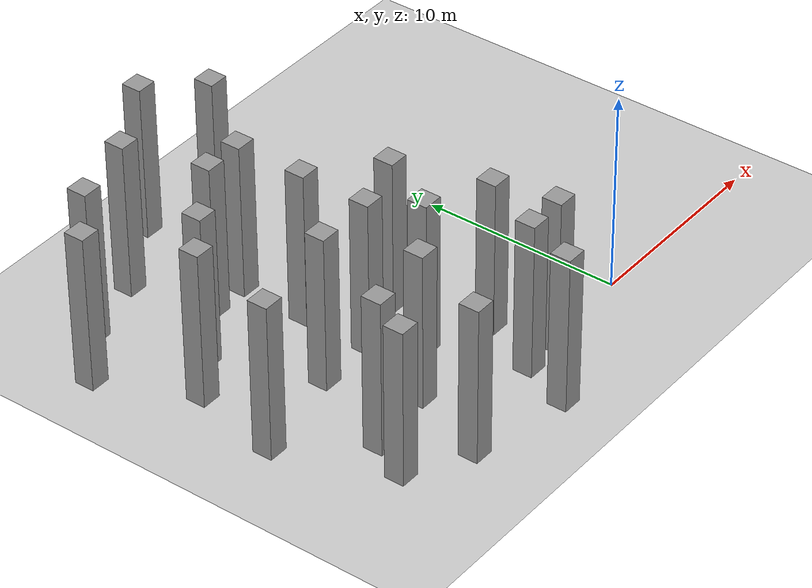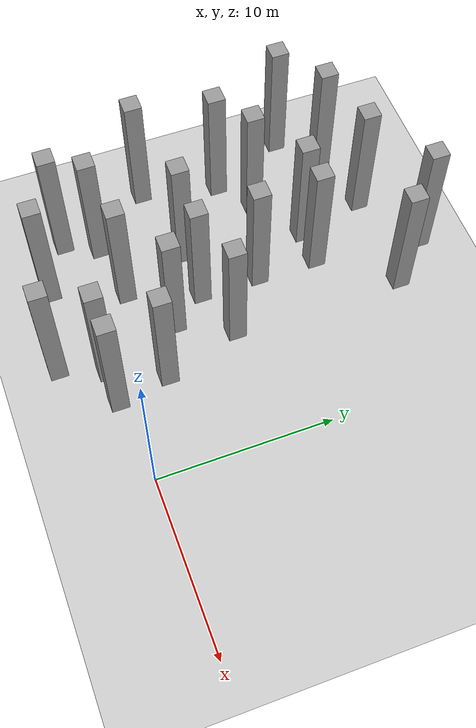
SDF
<sdf version="1.7">
 <world name="default">
  <model name="ground_plane">
   <static>1</static>
   <link name="link">
    <collision name="collision">
     <geometry><plane><normal>0 0 1</normal><size>100 100</size></plane></geometry>
     <surface>
      <contact><collide_bitmask>65535</collide_bitmask></contact>
      <friction><ode><mu>100</mu><mu2>50</mu2></ode></friction>
     </surface>
    </collision>
    <visual name="visual">
     <cast_shadows>0</cast_shadows>
     <geometry><plane><normal>0 0 1</normal><size>100 100</size></plane></geometry>
     <material>
      <script><uri>file://media/materials/scripts/gazebo.material</uri><name>Gazebo/Grey</name></script>
     </material>
    </visual>
   </link>
  </model>
  <model name="unit_box_static95_clone_52_clone_clone_2">
   <link name="link">
    <inertial>
     <mass>1</mass>
     <inertia>
      <ixx>0.166667</ixx>
      <ixy>0</ixy>
      <ixz>0</ixz>
      <iyy>0.166667</iyy>
      <iyz>0</iyz>
      <izz>0.166667</izz>
     </inertia>
    </inertial>
    <visual name="visual">
     <geometry><box><size>1 1 8</size></box></geometry>
     <material>
      <script><name>Gazebo/Grey</name><uri>file://media/materials/scripts/gazebo.material</uri></script>
      <shader type="pixel"/>
     </material>
    </visual>
    <collision name="collision">
     <geometry><box><size>1 1 8</size></box></geometry>
     <surface>
      <friction>
       <ode><mu>1</mu><mu2>1</mu2><fdir1>0 0 0</fdir1><slip1>0</slip1><slip2>0</slip2></ode>
       <torsional>
        <coefficient>1</coefficient>
        <patch_radius>0</patch_radius>
        <surface_radius>0</surface_radius>
        <use_patch_radius>1</use_patch_radius>
        <ode><slip>0</slip></ode>
       </torsional>
      </friction>
      <bounce><restitution_coefficient>0</restitution_coefficient><threshold>1e+06</threshold></bounce>
      <contact>
       <collide_without_contact>0</collide_without_contact>
       <collide_without_contact_bitmask>1</collide_without_contact_bitmask>
       <collide_bitmask>1</collide_bitmask>
       <ode>
        <soft_cfm>0</soft_cfm>
        <soft_erp>0.2</soft_erp>
        <kp>1e+13</kp>
        <kd>1</kd>
        <max_vel>0.01</max_vel>
        <min_depth>0</min_depth>
       </ode>
       <bullet>
        <split_impulse>1</split_impulse>
        <split_impulse_penetration_threshold>-0.01</split_impulse_penetration_threshold>
        <soft_cfm>0</soft_cfm>
        <soft_erp>0.2</soft_erp>
        <kp>1e+13</kp>
        <kd>1</kd>
       </bullet>
      </contact>
     </surface>
    </collision>
   </link>
   <static>1</static>
   <pose>-7 7 4 0 -0 0</pose>
  </model>
  <model name="unit_box_static95_clone_52_clone_clone_3">
   <link name="link">
    <inertial>
     <mass>1</mass>
     <inertia>
      <ixx>0.166667</ixx>
      <ixy>0</ixy>
      <ixz>0</ixz>
      <iyy>0.166667</iyy>
      <iyz>0</iyz>
      <izz>0.166667</izz>
     </inertia>
    </inertial>
    <visual name="visual">
     <geometry><box><size>1 1 8</size></box></geometry>
     <material>
      <script><name>Gazebo/Grey</name><uri>file://media/materials/scripts/gazebo.material</uri></script>
      <shader type="pixel"/>
     </material>
    </visual>
    <collision name="collision">
     <geometry><box><size>1 1 8</size></box></geometry>
     <surface>
      <friction>
       <ode><mu>1</mu><mu2>1</mu2><fdir1>0 0 0</fdir1><slip1>0</slip1><slip2>0</slip2></ode>
       <torsional>
        <coefficient>1</coefficient>
        <patch_radius>0</patch_radius>
        <surface_radius>0</surface_radius>
        <use_patch_radius>1</use_patch_radius>
        <ode><slip>0</slip></ode>
       </torsional>
      </friction>
      <bounce><restitution_coefficient>0</restitution_coefficient><threshold>1e+06</threshold></bounce>
      <contact>
       <collide_without_contact>0</collide_without_contact>
       <collide_without_contact_bitmask>1</collide_without_contact_bitmask>
       <collide_bitmask>1</collide_bitmask>
       <ode>
        <soft_cfm>0</soft_cfm>
        <soft_erp>0.2</soft_erp>
        <kp>1e+13</kp>
        <kd>1</kd>
        <max_vel>0.01</max_vel>
        <min_depth>0</min_depth>
       </ode>
       <bullet>
        <split_impulse>1</split_impulse>
        <split_impulse_penetration_threshold>-0.01</split_impulse_penetration_threshold>
        <soft_cfm>0</soft_cfm>
        <soft_erp>0.2</soft_erp>
        <kp>1e+13</kp>
        <kd>1</kd>
       </bullet>
      </contact>
     </surface>
    </collision>
   </link>
   <static>1</static>
   <pose>-5.58229 2.57124 4 0 -0 0</pose>
  </model>
  <model name="unit_box_static95_clone_52_clone_clone_4">
   <link name="link">
    <inertial>
     <mass>1</mass>
     <inertia>
      <ixx>0.166667</ixx>
      <ixy>0</ixy>
      <ixz>0</ixz>
      <iyy>0.166667</iyy>
      <iyz>0</iyz>
      <izz>0.166667</izz>
     </inertia>
    </inertial>
    <visual name="visual">
     <geometry><box><size>1 1 8</size></box></geometry>
     <material>
      <script><name>Gazebo/Grey</name><uri>file://media/materials/scripts/gazebo.material</uri></script>
      <shader type="pixel"/>
     </material>
    </visual>
    <collision name="collision">
     <geometry><box><size>1 1 8</size></box></geometry>
     <surface>
      <friction>
       <ode><mu>1</mu><mu2>1</mu2><fdir1>0 0 0</fdir1><slip1>0</slip1><slip2>0</slip2></ode>
       <torsional>
        <coefficient>1</coefficient>
        <patch_radius>0</patch_radius>
        <surface_radius>0</surface_radius>
        <use_patch_radius>1</use_patch_radius>
        <ode><slip>0</slip></ode>
       </torsional>
      </friction>
      <bounce><restitution_coefficient>0</restitution_coefficient><threshold>1e+06</threshold></bounce>
      <contact>
       <collide_without_contact>0</collide_without_contact>
       <collide_without_contact_bitmask>1</collide_without_contact_bitmask>
       <collide_bitmask>1</collide_bitmask>
       <ode>
        <soft_cfm>0</soft_cfm>
        <soft_erp>0.2</soft_erp>
        <kp>1e+13</kp>
        <kd>1</kd>
        <max_vel>0.01</max_vel>
        <min_depth>0</min_depth>
       </ode>
       <bullet>
        <split_impulse>1</split_impulse>
        <split_impulse_penetration_threshold>-0.01</split_impulse_penetration_threshold>
        <soft_cfm>0</soft_cfm>
        <soft_erp>0.2</soft_erp>
        <kp>1e+13</kp>
        <kd>1</kd>
       </bullet>
      </contact>
     </surface>
    </collision>
   </link>
   <static>1</static>
   <pose>-8.55951 4 4 0 -0 0</pose>
  </model>
  <model name="unit_box_static95_clone_52_clone_clone_5">
   <link name="link">
    <inertial>
     <mass>1</mass>
     <inertia>
      <ixx>0.166667</ixx>
      <ixy>0</ixy>
      <ixz>0</ixz>
      <iyy>0.166667</iyy>
      <iyz>0</iyz>
      <izz>0.166667</izz>
     </inertia>
    </inertial>
    <visual name="visual">
     <geometry><box><size>1 1 8</size></box></geometry>
     <material>
      <script><name>Gazebo/Grey</name><uri>file://media/materials/scripts/gazebo.material</uri></script>
      <shader type="pixel"/>
     </material>
    </visual>
    <collision name="collision">
     <geometry><box><size>1 1 8</size></box></geometry>
     <surface>
      <friction>
       <ode><mu>1</mu><mu2>1</mu2><fdir1>0 0 0</fdir1><slip1>0</slip1><slip2>0</slip2></ode>
       <torsional>
        <coefficient>1</coefficient>
        <patch_radius>0</patch_radius>
        <surface_radius>0</surface_radius>
        <use_patch_radius>1</use_patch_radius>
        <ode><slip>0</slip></ode>
       </torsional>
      </friction>
      <bounce><restitution_coefficient>0</restitution_coefficient><threshold>1e+06</threshold></bounce>
      <contact>
       <collide_without_contact>0</collide_without_contact>
       <collide_without_contact_bitmask>1</collide_without_contact_bitmask>
       <collide_bitmask>1</collide_bitmask>
       <ode>
        <soft_cfm>0</soft_cfm>
        <soft_erp>0.2</soft_erp>
        <kp>1e+13</kp>
        <kd>1</kd>
        <max_vel>0.01</max_vel>
        <min_depth>0</min_depth>
       </ode>
       <bullet>
        <split_impulse>1</split_impulse>
        <split_impulse_penetration_threshold>-0.01</split_impulse_penetration_threshold>
        <soft_cfm>0</soft_cfm>
        <soft_erp>0.2</soft_erp>
        <kp>1e+13</kp>
        <kd>1</kd>
       </bullet>
      </contact>
     </surface>
    </collision>
   </link>
   <static>1</static>
   <pose>-11.4691 2 4 0 -0 0</pose>
  </model>
  <model name="unit_box_static95_clone_52_clone_clone_6">
   <link name="link">
    <inertial>
     <mass>1</mass>
     <inertia>
      <ixx>0.166667</ixx>
      <ixy>0</ixy>
      <ixz>0</ixz>
      <iyy>0.166667</iyy>
      <iyz>0</iyz>
      <izz>0.166667</izz>
     </inertia>
    </inertial>
    <visual name="visual">
     <geometry><box><size>1 1 8</size></box></geometry>
     <material>
      <script><name>Gazebo/Grey</name><uri>file://media/materials/scripts/gazebo.material</uri></script>
      <shader type="pixel"/>
     </material>
    </visual>
    <collision name="collision">
     <geometry><box><size>1 1 8</size></box></geometry>
     <surface>
      <friction>
       <ode><mu>1</mu><mu2>1</mu2><fdir1>0 0 0</fdir1><slip1>0</slip1><slip2>0</slip2></ode>
       <torsional>
        <coefficient>1</coefficient>
        <patch_radius>0</patch_radius>
        <surface_radius>0</surface_radius>
        <use_patch_radius>1</use_patch_radius>
        <ode><slip>0</slip></ode>
       </torsional>
      </friction>
      <bounce><restitution_coefficient>0</restitution_coefficient><threshold>1e+06</threshold></bounce>
      <contact>
       <collide_without_contact>0</collide_without_contact>
       <collide_without_contact_bitmask>1</collide_without_contact_bitmask>
       <collide_bitmask>1</collide_bitmask>
       <ode>
        <soft_cfm>0</soft_cfm>
        <soft_erp>0.2</soft_erp>
        <kp>1e+13</kp>
        <kd>1</kd>
        <max_vel>0.01</max_vel>
        <min_depth>0</min_depth>
       </ode>
       <bullet>
        <split_impulse>1</split_impulse>
        <split_impulse_penetration_threshold>-0.01</split_impulse_penetration_threshold>
        <soft_cfm>0</soft_cfm>
        <soft_erp>0.2</soft_erp>
        <kp>1e+13</kp>
        <kd>1</kd>
       </bullet>
      </contact>
     </surface>
    </collision>
   </link>
   <static>1</static>
   <pose>-13 6 4 0 -0 0</pose>
  </model>
  <model name="unit_box_static95_clone_52_clone_clone_7">
   <link name="link">
    <inertial>
     <mass>1</mass>
     <inertia>
      <ixx>0.166667</ixx>
      <ixy>0</ixy>
      <ixz>0</ixz>
      <iyy>0.166667</iyy>
      <iyz>0</iyz>
      <izz>0.166667</izz>
     </inertia>
    </inertial>
    <visual name="visual">
     <geometry><box><size>1 1 8</size></box></geometry>
     <material>
      <script><name>Gazebo/Grey</name><uri>file://media/materials/scripts/gazebo.material</uri></script>
      <shader type="pixel"/>
     </material>
    </visual>
    <collision name="collision">
     <geometry><box><size>1 1 8</size></box></geometry>
     <surface>
      <friction>
       <ode><mu>1</mu><mu2>1</mu2><fdir1>0 0 0</fdir1><slip1>0</slip1><slip2>0</slip2></ode>
       <torsional>
        <coefficient>1</coefficient>
        <patch_radius>0</patch_radius>
        <surface_radius>0</surface_radius>
        <use_patch_radius>1</use_patch_radius>
        <ode><slip>0</slip></ode>
       </torsional>
      </friction>
      <bounce><restitution_coefficient>0</restitution_coefficient><threshold>1e+06</threshold></bounce>
      <contact>
       <collide_without_contact>0</collide_without_contact>
       <collide_without_contact_bitmask>1</collide_without_contact_bitmask>
       <collide_bitmask>1</collide_bitmask>
       <ode>
        <soft_cfm>0</soft_cfm>
        <soft_erp>0.2</soft_erp>
        <kp>1e+13</kp>
        <kd>1</kd>
        <max_vel>0.01</max_vel>
        <min_depth>0</min_depth>
       </ode>
       <bullet>
        <split_impulse>1</split_impulse>
        <split_impulse_penetration_threshold>-0.01</split_impulse_penetration_threshold>
        <soft_cfm>0</soft_cfm>
        <soft_erp>0.2</soft_erp>
        <kp>1e+13</kp>
        <kd>1</kd>
       </bullet>
      </contact>
     </surface>
    </collision>
   </link>
   <static>1</static>
   <pose>-10 6 4 0 -0 0</pose>
  </model>
  <model name="unit_box_static95_clone_52_clone_clone_9">
   <link name="link">
    <inertial>
     <mass>1</mass>
     <inertia>
      <ixx>0.166667</ixx>
      <ixy>0</ixy>
      <ixz>0</ixz>
      <iyy>0.166667</iyy>
      <iyz>0</iyz>
      <izz>0.166667</izz>
     </inertia>
    </inertial>
    <visual name="visual">
     <geometry><box><size>1 1 8</size></box></geometry>
     <material>
      <script><name>Gazebo/Grey</name><uri>file://media/materials/scripts/gazebo.material</uri></script>
      <shader type="pixel"/>
     </material>
    </visual>
    <collision name="collision">
     <geometry><box><size>1 1 8</size></box></geometry>
     <surface>
      <friction>
       <ode><mu>1</mu><mu2>1</mu2><fdir1>0 0 0</fdir1><slip1>0</slip1><slip2>0</slip2></ode>
       <torsional>
        <coefficient>1</coefficient>
        <patch_radius>0</patch_radius>
        <surface_radius>0</surface_radius>
        <use_patch_radius>1</use_patch_radius>
        <ode><slip>0</slip></ode>
       </torsional>
      </friction>
      <bounce><restitution_coefficient>0</restitution_coefficient><threshold>1e+06</threshold></bounce>
      <contact>
       <collide_without_contact>0</collide_without_contact>
       <collide_without_contact_bitmask>1</collide_without_contact_bitmask>
       <collide_bitmask>1</collide_bitmask>
       <ode>
        <soft_cfm>0</soft_cfm>
        <soft_erp>0.2</soft_erp>
        <kp>1e+13</kp>
        <kd>1</kd>
        <max_vel>0.01</max_vel>
        <min_depth>0</min_depth>
       </ode>
       <bullet>
        <split_impulse>1</split_impulse>
        <split_impulse_penetration_threshold>-0.01</split_impulse_penetration_threshold>
        <soft_cfm>0</soft_cfm>
        <soft_erp>0.2</soft_erp>
        <kp>1e+13</kp>
        <kd>1</kd>
       </bullet>
      </contact>
     </surface>
    </collision>
   </link>
   <static>1</static>
   <pose>-10 9.47298 4 0 -0 0</pose>
  </model>
  <model name="unit_box_static95_clone_52_clone_clone_22">
   <link name="link">
    <inertial>
     <mass>1</mass>
     <inertia>
      <ixx>0.166667</ixx>
      <ixy>0</ixy>
      <ixz>0</ixz>
      <iyy>0.166667</iyy>
      <iyz>0</iyz>
      <izz>0.166667</izz>
     </inertia>
    </inertial>
    <visual name="visual">
     <geometry><box><size>1 1 8</size></box></geometry>
     <material>
      <script><name>Gazebo/Grey</name><uri>file://media/materials/scripts/gazebo.material</uri></script>
      <shader type="pixel"/>
     </material>
    </visual>
    <collision name="collision">
     <geometry><box><size>1 1 8</size></box></geometry>
     <surface>
      <friction>
       <ode><mu>1</mu><mu2>1</mu2><fdir1>0 0 0</fdir1><slip1>0</slip1><slip2>0</slip2></ode>
       <torsional>
        <coefficient>1</coefficient>
        <patch_radius>0</patch_radius>
        <surface_radius>0</surface_radius>
        <use_patch_radius>1</use_patch_radius>
        <ode><slip>0</slip></ode>
       </torsional>
      </friction>
      <bounce><restitution_coefficient>0</restitution_coefficient><threshold>1e+06</threshold></bounce>
      <contact>
       <collide_without_contact>0</collide_without_contact>
       <collide_without_contact_bitmask>1</collide_without_contact_bitmask>
       <collide_bitmask>1</collide_bitmask>
       <ode>
        <soft_cfm>0</soft_cfm>
        <soft_erp>0.2</soft_erp>
        <kp>1e+13</kp>
        <kd>1</kd>
        <max_vel>0.01</max_vel>
        <min_depth>0</min_depth>
       </ode>
       <bullet>
        <split_impulse>1</split_impulse>
        <split_impulse_penetration_threshold>-0.01</split_impulse_penetration_threshold>
        <soft_cfm>0</soft_cfm>
        <soft_erp>0.2</soft_erp>
        <kp>1e+13</kp>
        <kd>1</kd>
       </bullet>
      </contact>
     </surface>
    </collision>
   </link>
   <static>1</static>
   <pose>-8 -3 4 0 -0 0</pose>
  </model>
  <model name="unit_box_static95_clone_52_clone_clone_26">
   <link name="link">
    <inertial>
     <mass>1</mass>
     <inertia>
      <ixx>0.166667</ixx>
      <ixy>0</ixy>
      <ixz>0</ixz>
      <iyy>0.166667</iyy>
      <iyz>0</iyz>
      <izz>0.166667</izz>
     </inertia>
    </inertial>
    <visual name="visual">
     <geometry><box><size>1 1 8</size></box></geometry>
     <material>
      <script><name>Gazebo/Grey</name><uri>file://media/materials/scripts/gazebo.material</uri></script>
      <shader type="pixel"/>
     </material>
    </visual>
    <collision name="collision">
     <geometry><box><size>1 1 8</size></box></geometry>
     <surface>
      <friction>
       <ode><mu>1</mu><mu2>1</mu2><fdir1>0 0 0</fdir1><slip1>0</slip1><slip2>0</slip2></ode>
       <torsional>
        <coefficient>1</coefficient>
        <patch_radius>0</patch_radius>
        <surface_radius>0</surface_radius>
        <use_patch_radius>1</use_patch_radius>
        <ode><slip>0</slip></ode>
       </torsional>
      </friction>
      <bounce><restitution_coefficient>0</restitution_coefficient><threshold>1e+06</threshold></bounce>
      <contact>
       <collide_without_contact>0</collide_without_contact>
       <collide_without_contact_bitmask>1</collide_without_contact_bitmask>
       <collide_bitmask>1</collide_bitmask>
       <ode>
        <soft_cfm>0</soft_cfm>
        <soft_erp>0.2</soft_erp>
        <kp>1e+13</kp>
        <kd>1</kd>
        <max_vel>0.01</max_vel>
        <min_depth>0</min_depth>
       </ode>
       <bullet>
        <split_impulse>1</split_impulse>
        <split_impulse_penetration_threshold>-0.01</split_impulse_penetration_threshold>
        <soft_cfm>0</soft_cfm>
        <soft_erp>0.2</soft_erp>
        <kp>1e+13</kp>
        <kd>1</kd>
       </bullet>
      </contact>
     </surface>
    </collision>
   </link>
   <static>1</static>
   <pose>-13 -2 4 0 -0 0</pose>
  </model>
  <model name="unit_box_static95_clone_52_clone_clone_27">
   <link name="link">
    <inertial>
     <mass>1</mass>
     <inertia>
      <ixx>0.166667</ixx>
      <ixy>0</ixy>
      <ixz>0</ixz>
      <iyy>0.166667</iyy>
      <iyz>0</iyz>
      <izz>0.166667</izz>
     </inertia>
    </inertial>
    <visual name="visual">
     <geometry><box><size>1 1 8</size></box></geometry>
     <material>
      <script><name>Gazebo/Grey</name><uri>file://media/materials/scripts/gazebo.material</uri></script>
      <shader type="pixel"/>
     </material>
    </visual>
    <collision name="collision">
     <geometry><box><size>1 1 8</size></box></geometry>
     <surface>
      <friction>
       <ode><mu>1</mu><mu2>1</mu2><fdir1>0 0 0</fdir1><slip1>0</slip1><slip2>0</slip2></ode>
       <torsional>
        <coefficient>1</coefficient>
        <patch_radius>0</patch_radius>
        <surface_radius>0</surface_radius>
        <use_patch_radius>1</use_patch_radius>
        <ode><slip>0</slip></ode>
       </torsional>
      </friction>
      <bounce><restitution_coefficient>0</restitution_coefficient><threshold>1e+06</threshold></bounce>
      <contact>
       <collide_without_contact>0</collide_without_contact>
       <collide_without_contact_bitmask>1</collide_without_contact_bitmask>
       <collide_bitmask>1</collide_bitmask>
       <ode>
        <soft_cfm>0</soft_cfm>
        <soft_erp>0.2</soft_erp>
        <kp>1e+13</kp>
        <kd>1</kd>
        <max_vel>0.01</max_vel>
        <min_depth>0</min_depth>
       </ode>
       <bullet>
        <split_impulse>1</split_impulse>
        <split_impulse_penetration_threshold>-0.01</split_impulse_penetration_threshold>
        <soft_cfm>0</soft_cfm>
        <soft_erp>0.2</soft_erp>
        <kp>1e+13</kp>
        <kd>1</kd>
       </bullet>
      </contact>
     </surface>
    </collision>
   </link>
   <static>1</static>
   <pose>-15 1.47683 4 0 -0 0</pose>
  </model>
  <model name="unit_box_static95_clone_52_clone_clone_28">
   <link name="link">
    <inertial>
     <mass>1</mass>
     <inertia>
      <ixx>0.166667</ixx>
      <ixy>0</ixy>
      <ixz>0</ixz>
      <iyy>0.166667</iyy>
      <iyz>0</iyz>
      <izz>0.166667</izz>
     </inertia>
    </inertial>
    <visual name="visual">
     <geometry><box><size>1 1 8</size></box></geometry>
     <material>
      <script><name>Gazebo/Grey</name><uri>file://media/materials/scripts/gazebo.material</uri></script>
      <shader type="pixel"/>
     </material>
    </visual>
    <collision name="collision">
     <geometry><box><size>1 1 8</size></box></geometry>
     <surface>
      <friction>
       <ode><mu>1</mu><mu2>1</mu2><fdir1>0 0 0</fdir1><slip1>0</slip1><slip2>0</slip2></ode>
       <torsional>
        <coefficient>1</coefficient>
        <patch_radius>0</patch_radius>
        <surface_radius>0</surface_radius>
        <use_patch_radius>1</use_patch_radius>
        <ode><slip>0</slip></ode>
       </torsional>
      </friction>
      <bounce><restitution_coefficient>0</restitution_coefficient><threshold>1e+06</threshold></bounce>
      <contact>
       <collide_without_contact>0</collide_without_contact>
       <collide_without_contact_bitmask>1</collide_without_contact_bitmask>
       <collide_bitmask>1</collide_bitmask>
       <ode>
        <soft_cfm>0</soft_cfm>
        <soft_erp>0.2</soft_erp>
        <kp>1e+13</kp>
        <kd>1</kd>
        <max_vel>0.01</max_vel>
        <min_depth>0</min_depth>
       </ode>
       <bullet>
        <split_impulse>1</split_impulse>
        <split_impulse_penetration_threshold>-0.01</split_impulse_penetration_threshold>
        <soft_cfm>0</soft_cfm>
        <soft_erp>0.2</soft_erp>
        <kp>1e+13</kp>
        <kd>1</kd>
       </bullet>
      </contact>
     </surface>
    </collision>
   </link>
   <static>1</static>
   <pose>-16 -0.417755 4 0 -0 0</pose>
  </model>
  <model name="unit_box_static95_clone_52_clone_clone_62">
   <link name="link">
    <inertial>
     <mass>1</mass>
     <inertia>
      <ixx>0.166667</ixx>
      <ixy>0</ixy>
      <ixz>0</ixz>
      <iyy>0.166667</iyy>
      <iyz>0</iyz>
      <izz>0.166667</izz>
     </inertia>
    </inertial>
    <visual name="visual">
     <geometry><box><size>1 1 8</size></box></geometry>
     <material>
      <script><name>Gazebo/Grey</name><uri>file://media/materials/scripts/gazebo.material</uri></script>
      <shader type="pixel"/>
     </material>
    </visual>
    <collision name="collision">
     <geometry><box><size>1 1 8</size></box></geometry>
     <surface>
      <friction>
       <ode><mu>1</mu><mu2>1</mu2><fdir1>0 0 0</fdir1><slip1>0</slip1><slip2>0</slip2></ode>
       <torsional>
        <coefficient>1</coefficient>
        <patch_radius>0</patch_radius>
        <surface_radius>0</surface_radius>
        <use_patch_radius>1</use_patch_radius>
        <ode><slip>0</slip></ode>
       </torsional>
      </friction>
      <bounce><restitution_coefficient>0</restitution_coefficient><threshold>1e+06</threshold></bounce>
      <contact>
       <collide_without_contact>0</collide_without_contact>
       <collide_without_contact_bitmask>1</collide_without_contact_bitmask>
       <collide_bitmask>1</collide_bitmask>
       <ode>
        <soft_cfm>0</soft_cfm>
        <soft_erp>0.2</soft_erp>
        <kp>1e+13</kp>
        <kd>1</kd>
        <max_vel>0.01</max_vel>
        <min_depth>0</min_depth>
       </ode>
       <bullet>
        <split_impulse>1</split_impulse>
        <split_impulse_penetration_threshold>-0.01</split_impulse_penetration_threshold>
        <soft_cfm>0</soft_cfm>
        <soft_erp>0.2</soft_erp>
        <kp>1e+13</kp>
        <kd>1</kd>
       </bullet>
      </contact>
     </surface>
    </collision>
   </link>
   <static>1</static>
   <pose>-7 17 4 0 -0 0</pose>
  </model>
  <model name="unit_box_static95_clone_52_clone_clone_69">
   <link name="link">
    <inertial>
     <mass>1</mass>
     <inertia>
      <ixx>0.166667</ixx>
      <ixy>0</ixy>
      <ixz>0</ixz>
      <iyy>0.166667</iyy>
      <iyz>0</iyz>
      <izz>0.166667</izz>
     </inertia>
    </inertial>
    <visual name="visual">
     <geometry><box><size>1 1 8</size></box></geometry>
     <material>
      <script><name>Gazebo/Grey</name><uri>file://media/materials/scripts/gazebo.material</uri></script>
      <shader type="pixel"/>
     </material>
    </visual>
    <collision name="collision">
     <geometry><box><size>1 1 8</size></box></geometry>
     <surface>
      <friction>
       <ode><mu>1</mu><mu2>1</mu2><fdir1>0 0 0</fdir1><slip1>0</slip1><slip2>0</slip2></ode>
       <torsional>
        <coefficient>1</coefficient>
        <patch_radius>0</patch_radius>
        <surface_radius>0</surface_radius>
        <use_patch_radius>1</use_patch_radius>
        <ode><slip>0</slip></ode>
       </torsional>
      </friction>
      <bounce><restitution_coefficient>0</restitution_coefficient><threshold>1e+06</threshold></bounce>
      <contact>
       <collide_without_contact>0</collide_without_contact>
       <collide_without_contact_bitmask>1</collide_without_contact_bitmask>
       <collide_bitmask>1</collide_bitmask>
       <ode>
        <soft_cfm>0</soft_cfm>
        <soft_erp>0.2</soft_erp>
        <kp>1e+13</kp>
        <kd>1</kd>
        <max_vel>0.01</max_vel>
        <min_depth>0</min_depth>
       </ode>
       <bullet>
        <split_impulse>1</split_impulse>
        <split_impulse_penetration_threshold>-0.01</split_impulse_penetration_threshold>
        <soft_cfm>0</soft_cfm>
        <soft_erp>0.2</soft_erp>
        <kp>1e+13</kp>
        <kd>1</kd>
       </bullet>
      </contact>
     </surface>
    </collision>
   </link>
   <static>1</static>
   <pose>-12 13 4 0 -0 0</pose>
  </model>
  <model name="unit_box_static95_clone_52_clone_clone_70">
   <link name="link">
    <inertial>
     <mass>1</mass>
     <inertia>
      <ixx>0.166667</ixx>
      <ixy>0</ixy>
      <ixz>0</ixz>
      <iyy>0.166667</iyy>
      <iyz>0</iyz>
      <izz>0.166667</izz>
     </inertia>
    </inertial>
    <visual name="visual">
     <geometry><box><size>1 1 8</size></box></geometry>
     <material>
      <script><name>Gazebo/Grey</name><uri>file://media/materials/scripts/gazebo.material</uri></script>
      <shader type="pixel"/>
     </material>
    </visual>
    <collision name="collision">
     <geometry><box><size>1 1 8</size></box></geometry>
     <surface>
      <friction>
       <ode><mu>1</mu><mu2>1</mu2><fdir1>0 0 0</fdir1><slip1>0</slip1><slip2>0</slip2></ode>
       <torsional>
        <coefficient>1</coefficient>
        <patch_radius>0</patch_radius>
        <surface_radius>0</surface_radius>
        <use_patch_radius>1</use_patch_radius>
        <ode><slip>0</slip></ode>
       </torsional>
      </friction>
      <bounce><restitution_coefficient>0</restitution_coefficient><threshold>1e+06</threshold></bounce>
      <contact>
       <collide_without_contact>0</collide_without_contact>
       <collide_without_contact_bitmask>1</collide_without_contact_bitmask>
       <collide_bitmask>1</collide_bitmask>
       <ode>
        <soft_cfm>0</soft_cfm>
        <soft_erp>0.2</soft_erp>
        <kp>1e+13</kp>
        <kd>1</kd>
        <max_vel>0.01</max_vel>
        <min_depth>0</min_depth>
       </ode>
       <bullet>
        <split_impulse>1</split_impulse>
        <split_impulse_penetration_threshold>-0.01</split_impulse_penetration_threshold>
        <soft_cfm>0</soft_cfm>
        <soft_erp>0.2</soft_erp>
        <kp>1e+13</kp>
        <kd>1</kd>
       </bullet>
      </contact>
     </surface>
    </collision>
   </link>
   <static>1</static>
   <pose>-16.5678 16 4 0 -0 0</pose>
  </model>
  <model name="unit_box_static95_clone_52_clone_clone_71">
   <link name="link">
    <inertial>
     <mass>1</mass>
     <inertia>
      <ixx>0.166667</ixx>
      <ixy>0</ixy>
      <ixz>0</ixz>
      <iyy>0.166667</iyy>
      <iyz>0</iyz>
      <izz>0.166667</izz>
     </inertia>
    </inertial>
    <visual name="visual">
     <geometry><box><size>1 1 8</size></box></geometry>
     <material>
      <script><name>Gazebo/Grey</name><uri>file://media/materials/scripts/gazebo.material</uri></script>
      <shader type="pixel"/>
     </material>
    </visual>
    <collision name="collision">
     <geometry><box><size>1 1 8</size></box></geometry>
     <surface>
      <friction>
       <ode><mu>1</mu><mu2>1</mu2><fdir1>0 0 0</fdir1><slip1>0</slip1><slip2>0</slip2></ode>
       <torsional>
        <coefficient>1</coefficient>
        <patch_radius>0</patch_radius>
        <surface_radius>0</surface_radius>
        <use_patch_radius>1</use_patch_radius>
        <ode><slip>0</slip></ode>
       </torsional>
      </friction>
      <bounce><restitution_coefficient>0</restitution_coefficient><threshold>1e+06</threshold></bounce>
      <contact>
       <collide_without_contact>0</collide_without_contact>
       <collide_without_contact_bitmask>1</collide_without_contact_bitmask>
       <collide_bitmask>1</collide_bitmask>
       <ode>
        <soft_cfm>0</soft_cfm>
        <soft_erp>0.2</soft_erp>
        <kp>1e+13</kp>
        <kd>1</kd>
        <max_vel>0.01</max_vel>
        <min_depth>0</min_depth>
       </ode>
       <bullet>
        <split_impulse>1</split_impulse>
        <split_impulse_penetration_threshold>-0.01</split_impulse_penetration_threshold>
        <soft_cfm>0</soft_cfm>
        <soft_erp>0.2</soft_erp>
        <kp>1e+13</kp>
        <kd>1</kd>
       </bullet>
      </contact>
     </surface>
    </collision>
   </link>
   <static>1</static>
   <pose>-13 17 4 0 -0 0</pose>
  </model>
  <model name="unit_box_static95_clone_52_clone_clone_72">
   <link name="link">
    <inertial>
     <mass>1</mass>
     <inertia>
      <ixx>0.166667</ixx>
      <ixy>0</ixy>
      <ixz>0</ixz>
      <iyy>0.166667</iyy>
      <iyz>0</iyz>
      <izz>0.166667</izz>
     </inertia>
    </inertial>
    <visual name="visual">
     <geometry><box><size>1 1 8</size></box></geometry>
     <material>
      <script><name>Gazebo/Grey</name><uri>file://media/materials/scripts/gazebo.material</uri></script>
      <shader type="pixel"/>
     </material>
    </visual>
    <collision name="collision">
     <geometry><box><size>1 1 8</size></box></geometry>
     <surface>
      <friction>
       <ode><mu>1</mu><mu2>1</mu2><fdir1>0 0 0</fdir1><slip1>0</slip1><slip2>0</slip2></ode>
       <torsional>
        <coefficient>1</coefficient>
        <patch_radius>0</patch_radius>
        <surface_radius>0</surface_radius>
        <use_patch_radius>1</use_patch_radius>
        <ode><slip>0</slip></ode>
       </torsional>
      </friction>
      <bounce><restitution_coefficient>0</restitution_coefficient><threshold>1e+06</threshold></bounce>
      <contact>
       <collide_without_contact>0</collide_without_contact>
       <collide_without_contact_bitmask>1</collide_without_contact_bitmask>
       <collide_bitmask>1</collide_bitmask>
       <ode>
        <soft_cfm>0</soft_cfm>
        <soft_erp>0.2</soft_erp>
        <kp>1e+13</kp>
        <kd>1</kd>
        <max_vel>0.01</max_vel>
        <min_depth>0</min_depth>
       </ode>
       <bullet>
        <split_impulse>1</split_impulse>
        <split_impulse_penetration_threshold>-0.01</split_impulse_penetration_threshold>
        <soft_cfm>0</soft_cfm>
        <soft_erp>0.2</soft_erp>
        <kp>1e+13</kp>
        <kd>1</kd>
       </bullet>
      </contact>
     </surface>
    </collision>
   </link>
   <static>1</static>
   <pose>-10 13 4 0 -0 0</pose>
  </model>
  <model name="unit_box_static95_clone_52_clone_clone_76">
   <link name="link">
    <inertial>
     <mass>1</mass>
     <inertia>
      <ixx>0.166667</ixx>
      <ixy>0</ixy>
      <ixz>0</ixz>
      <iyy>0.166667</iyy>
      <iyz>0</iyz>
      <izz>0.166667</izz>
     </inertia>
    </inertial>
    <visual name="visual">
     <geometry><box><size>1 1 8</size></box></geometry>
     <material>
      <script><name>Gazebo/Grey</name><uri>file://media/materials/scripts/gazebo.material</uri></script>
      <shader type="pixel"/>
     </material>
    </visual>
    <collision name="collision">
     <geometry><box><size>1 1 8</size></box></geometry>
     <surface>
      <friction>
       <ode><mu>1</mu><mu2>1</mu2><fdir1>0 0 0</fdir1><slip1>0</slip1><slip2>0</slip2></ode>
       <torsional>
        <coefficient>1</coefficient>
        <patch_radius>0</patch_radius>
        <surface_radius>0</surface_radius>
        <use_patch_radius>1</use_patch_radius>
        <ode><slip>0</slip></ode>
       </torsional>
      </friction>
      <bounce><restitution_coefficient>0</restitution_coefficient><threshold>1e+06</threshold></bounce>
      <contact>
       <collide_without_contact>0</collide_without_contact>
       <collide_without_contact_bitmask>1</collide_without_contact_bitmask>
       <collide_bitmask>1</collide_bitmask>
       <ode>
        <soft_cfm>0</soft_cfm>
        <soft_erp>0.2</soft_erp>
        <kp>1e+13</kp>
        <kd>1</kd>
        <max_vel>0.01</max_vel>
        <min_depth>0</min_depth>
       </ode>
       <bullet>
        <split_impulse>1</split_impulse>
        <split_impulse_penetration_threshold>-0.01</split_impulse_penetration_threshold>
        <soft_cfm>0</soft_cfm>
        <soft_erp>0.2</soft_erp>
        <kp>1e+13</kp>
        <kd>1</kd>
       </bullet>
      </contact>
     </surface>
    </collision>
   </link>
   <static>1</static>
   <pose>-7 -0.482951 4 0 -0 0</pose>
  </model>
  <model name="unit_box_static95_clone_52_clone_clone_77">
   <link name="link">
    <inertial>
     <mass>1</mass>
     <inertia>
      <ixx>0.166667</ixx>
      <ixy>0</ixy>
      <ixz>0</ixz>
      <iyy>0.166667</iyy>
      <iyz>0</iyz>
      <izz>0.166667</izz>
     </inertia>
    </inertial>
    <visual name="visual">
     <geometry><box><size>1 1 8</size></box></geometry>
     <material>
      <script><name>Gazebo/Grey</name><uri>file://media/materials/scripts/gazebo.material</uri></script>
      <shader type="pixel"/>
     </material>
    </visual>
    <collision name="collision">
     <geometry><box><size>1 1 8</size></box></geometry>
     <surface>
      <friction>
       <ode><mu>1</mu><mu2>1</mu2><fdir1>0 0 0</fdir1><slip1>0</slip1><slip2>0</slip2></ode>
       <torsional>
        <coefficient>1</coefficient>
        <patch_radius>0</patch_radius>
        <surface_radius>0</surface_radius>
        <use_patch_radius>1</use_patch_radius>
        <ode><slip>0</slip></ode>
       </torsional>
      </friction>
      <bounce><restitution_coefficient>0</restitution_coefficient><threshold>1e+06</threshold></bounce>
      <contact>
       <collide_without_contact>0</collide_without_contact>
       <collide_without_contact_bitmask>1</collide_without_contact_bitmask>
       <collide_bitmask>1</collide_bitmask>
       <ode>
        <soft_cfm>0</soft_cfm>
        <soft_erp>0.2</soft_erp>
        <kp>1e+13</kp>
        <kd>1</kd>
        <max_vel>0.01</max_vel>
        <min_depth>0</min_depth>
       </ode>
       <bullet>
        <split_impulse>1</split_impulse>
        <split_impulse_penetration_threshold>-0.01</split_impulse_penetration_threshold>
        <soft_cfm>0</soft_cfm>
        <soft_erp>0.2</soft_erp>
        <kp>1e+13</kp>
        <kd>1</kd>
       </bullet>
      </contact>
     </surface>
    </collision>
   </link>
   <static>1</static>
   <pose>-5 -0.435382 4 0 -0 0</pose>
  </model>
  <model name="unit_box_static95_clone_52_clone_clone_108">
   <link name="link">
    <inertial>
     <mass>1</mass>
     <inertia>
      <ixx>0.166667</ixx>
      <ixy>0</ixy>
      <ixz>0</ixz>
      <iyy>0.166667</iyy>
      <iyz>0</iyz>
      <izz>0.166667</izz>
     </inertia>
    </inertial>
    <visual name="visual">
     <geometry><box><size>1 1 8</size></box></geometry>
     <material>
      <script><name>Gazebo/Grey</name><uri>file://media/materials/scripts/gazebo.material</uri></script>
      <shader type="pixel"/>
     </material>
    </visual>
    <collision name="collision">
     <geometry><box><size>1 1 8</size></box></geometry>
     <surface>
      <friction>
       <ode><mu>1</mu><mu2>1</mu2><fdir1>0 0 0</fdir1><slip1>0</slip1><slip2>0</slip2></ode>
       <torsional>
        <coefficient>1</coefficient>
        <patch_radius>0</patch_radius>
        <surface_radius>0</surface_radius>
        <use_patch_radius>1</use_patch_radius>
        <ode><slip>0</slip></ode>
       </torsional>
      </friction>
      <bounce><restitution_coefficient>0</restitution_coefficient><threshold>1e+06</threshold></bounce>
      <contact>
       <collide_without_contact>0</collide_without_contact>
       <collide_without_contact_bitmask>1</collide_without_contact_bitmask>
       <collide_bitmask>1</collide_bitmask>
       <ode>
        <soft_cfm>0</soft_cfm>
        <soft_erp>0.2</soft_erp>
        <kp>1e+13</kp>
        <kd>1</kd>
        <max_vel>0.01</max_vel>
        <min_depth>0</min_depth>
       </ode>
       <bullet>
        <split_impulse>1</split_impulse>
        <split_impulse_penetration_threshold>-0.01</split_impulse_penetration_threshold>
        <soft_cfm>0</soft_cfm>
        <soft_erp>0.2</soft_erp>
        <kp>1e+13</kp>
        <kd>1</kd>
       </bullet>
      </contact>
     </surface>
    </collision>
   </link>
   <static>1</static>
   <pose>-17 9.46936 4 0 -0 0</pose>
  </model>
  <model name="unit_box_static95_clone_52_clone_clone_109">
   <link name="link">
    <inertial>
     <mass>1</mass>
     <inertia>
      <ixx>0.166667</ixx>
      <ixy>0</ixy>
      <ixz>0</ixz>
      <iyy>0.166667</iyy>
      <iyz>0</iyz>
      <izz>0.166667</izz>
     </inertia>
    </inertial>
    <visual name="visual">
     <geometry><box><size>1 1 8</size></box></geometry>
     <material>
      <script><name>Gazebo/Grey</name><uri>file://media/materials/scripts/gazebo.material</uri></script>
      <shader type="pixel"/>
     </material>
    </visual>
    <collision name="collision">
     <geometry><box><size>1 1 8</size></box></geometry>
     <surface>
      <friction>
       <ode><mu>1</mu><mu2>1</mu2><fdir1>0 0 0</fdir1><slip1>0</slip1><slip2>0</slip2></ode>
       <torsional>
        <coefficient>1</coefficient>
        <patch_radius>0</patch_radius>
        <surface_radius>0</surface_radius>
        <use_patch_radius>1</use_patch_radius>
        <ode><slip>0</slip></ode>
       </torsional>
      </friction>
      <bounce><restitution_coefficient>0</restitution_coefficient><threshold>1e+06</threshold></bounce>
      <contact>
       <collide_without_contact>0</collide_without_contact>
       <collide_without_contact_bitmask>1</collide_without_contact_bitmask>
       <collide_bitmask>1</collide_bitmask>
       <ode>
        <soft_cfm>0</soft_cfm>
        <soft_erp>0.2</soft_erp>
        <kp>1e+13</kp>
        <kd>1</kd>
        <max_vel>0.01</max_vel>
        <min_depth>0</min_depth>
       </ode>
       <bullet>
        <split_impulse>1</split_impulse>
        <split_impulse_penetration_threshold>-0.01</split_impulse_penetration_threshold>
        <soft_cfm>0</soft_cfm>
        <soft_erp>0.2</soft_erp>
        <kp>1e+13</kp>
        <kd>1</kd>
       </bullet>
      </contact>
     </surface>
    </collision>
   </link>
   <static>1</static>
   <pose>-18 5 4 0 -0 0</pose>
  </model>
  <model name="unit_box_static95_clone_52_clone_clone_110">
   <link name="link">
    <inertial>
     <mass>1</mass>
     <inertia>
      <ixx>0.166667</ixx>
      <ixy>0</ixy>
      <ixz>0</ixz>
      <iyy>0.166667</iyy>
      <iyz>0</iyz>
      <izz>0.166667</izz>
     </inertia>
    </inertial>
    <visual name="visual">
     <geometry><box><size>1 1 8</size></box></geometry>
     <material>
      <script><name>Gazebo/Grey</name><uri>file://media/materials/scripts/gazebo.material</uri></script>
      <shader type="pixel"/>
     </material>
    </visual>
    <collision name="collision">
     <geometry><box><size>1 1 8</size></box></geometry>
     <surface>
      <friction>
       <ode><mu>1</mu><mu2>1</mu2><fdir1>0 0 0</fdir1><slip1>0</slip1><slip2>0</slip2></ode>
       <torsional>
        <coefficient>1</coefficient>
        <patch_radius>0</patch_radius>
        <surface_radius>0</surface_radius>
        <use_patch_radius>1</use_patch_radius>
        <ode><slip>0</slip></ode>
       </torsional>
      </friction>
      <bounce><restitution_coefficient>0</restitution_coefficient><threshold>1e+06</threshold></bounce>
      <contact>
       <collide_without_contact>0</collide_without_contact>
       <collide_without_contact_bitmask>1</collide_without_contact_bitmask>
       <collide_bitmask>1</collide_bitmask>
       <ode>
        <soft_cfm>0</soft_cfm>
        <soft_erp>0.2</soft_erp>
        <kp>1e+13</kp>
        <kd>1</kd>
        <max_vel>0.01</max_vel>
        <min_depth>0</min_depth>
       </ode>
       <bullet>
        <split_impulse>1</split_impulse>
        <split_impulse_penetration_threshold>-0.01</split_impulse_penetration_threshold>
        <soft_cfm>0</soft_cfm>
        <soft_erp>0.2</soft_erp>
        <kp>1e+13</kp>
        <kd>1</kd>
       </bullet>
      </contact>
     </surface>
    </collision>
   </link>
   <static>1</static>
   <pose>-15 11 4 0 -0 0</pose>
  </model>
  <model name="unit_box_static95_clone_52_clone_clone_111">
   <link name="link">
    <inertial>
     <mass>1</mass>
     <inertia>
      <ixx>0.166667</ixx>
      <ixy>0</ixy>
      <ixz>0</ixz>
      <iyy>0.166667</iyy>
      <iyz>0</iyz>
      <izz>0.166667</izz>
     </inertia>
    </inertial>
    <visual name="visual">
     <geometry><box><size>1 1 8</size></box></geometry>
     <material>
      <script><name>Gazebo/Grey</name><uri>file://media/materials/scripts/gazebo.material</uri></script>
      <shader type="pixel"/>
     </material>
    </visual>
    <collision name="collision">
     <geometry><box><size>1 1 8</size></box></geometry>
     <surface>
      <friction>
       <ode><mu>1</mu><mu2>1</mu2><fdir1>0 0 0</fdir1><slip1>0</slip1><slip2>0</slip2></ode>
       <torsional>
        <coefficient>1</coefficient>
        <patch_radius>0</patch_radius>
        <surface_radius>0</surface_radius>
        <use_patch_radius>1</use_patch_radius>
        <ode><slip>0</slip></ode>
       </torsional>
      </friction>
      <bounce><restitution_coefficient>0</restitution_coefficient><threshold>1e+06</threshold></bounce>
      <contact>
       <collide_without_contact>0</collide_without_contact>
       <collide_without_contact_bitmask>1</collide_without_contact_bitmask>
       <collide_bitmask>1</collide_bitmask>
       <ode>
        <soft_cfm>0</soft_cfm>
        <soft_erp>0.2</soft_erp>
        <kp>1e+13</kp>
        <kd>1</kd>
        <max_vel>0.01</max_vel>
        <min_depth>0</min_depth>
       </ode>
       <bullet>
        <split_impulse>1</split_impulse>
        <split_impulse_penetration_threshold>-0.01</split_impulse_penetration_threshold>
        <soft_cfm>0</soft_cfm>
        <soft_erp>0.2</soft_erp>
        <kp>1e+13</kp>
        <kd>1</kd>
       </bullet>
      </contact>
     </surface>
    </collision>
   </link>
   <static>1</static>
   <pose>-19 14 4 0 -0 0</pose>
  </model>
  <model name="unit_box_static95_clone_52_clone_clone_136">
   <link name="link">
    <inertial>
     <mass>1</mass>
     <inertia>
      <ixx>0.166667</ixx>
      <ixy>0</ixy>
      <ixz>0</ixz>
      <iyy>0.166667</iyy>
      <iyz>0</iyz>
      <izz>0.166667</izz>
     </inertia>
    </inertial>
    <visual name="visual">
     <geometry><box><size>1 1 8</size></box></geometry>
     <material>
      <script><name>Gazebo/Grey</name><uri>file://media/materials/scripts/gazebo.material</uri></script>
      <shader type="pixel"/>
     </material>
    </visual>
    <collision name="collision">
     <geometry><box><size>1 1 8</size></box></geometry>
     <surface>
      <friction>
       <ode><mu>1</mu><mu2>1</mu2><fdir1>0 0 0</fdir1><slip1>0</slip1><slip2>0</slip2></ode>
       <torsional>
        <coefficient>1</coefficient>
        <patch_radius>0</patch_radius>
        <surface_radius>0</surface_radius>
        <use_patch_radius>1</use_patch_radius>
        <ode><slip>0</slip></ode>
       </torsional>
      </friction>
      <bounce><restitution_coefficient>0</restitution_coefficient><threshold>1e+06</threshold></bounce>
      <contact>
       <collide_without_contact>0</collide_without_contact>
       <collide_without_contact_bitmask>1</collide_without_contact_bitmask>
       <collide_bitmask>1</collide_bitmask>
       <ode>
        <soft_cfm>0</soft_cfm>
        <soft_erp>0.2</soft_erp>
        <kp>1e+13</kp>
        <kd>1</kd>
        <max_vel>0.01</max_vel>
        <min_depth>0</min_depth>
       </ode>
       <bullet>
        <split_impulse>1</split_impulse>
        <split_impulse_penetration_threshold>-0.01</split_impulse_penetration_threshold>
        <soft_cfm>0</soft_cfm>
        <soft_erp>0.2</soft_erp>
        <kp>1e+13</kp>
        <kd>1</kd>
       </bullet>
      </contact>
     </surface>
    </collision>
   </link>
   <static>1</static>
   <pose>-9.22359 19.2715 4 0 -0 0</pose>
  </model>
 </world>
</sdf>
